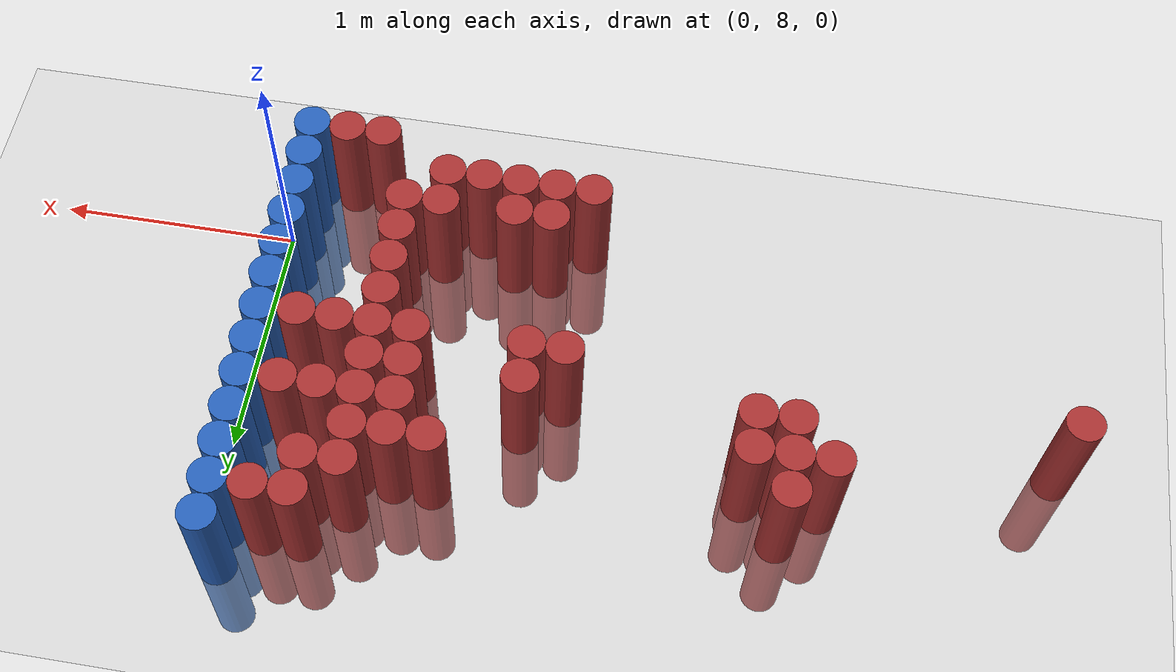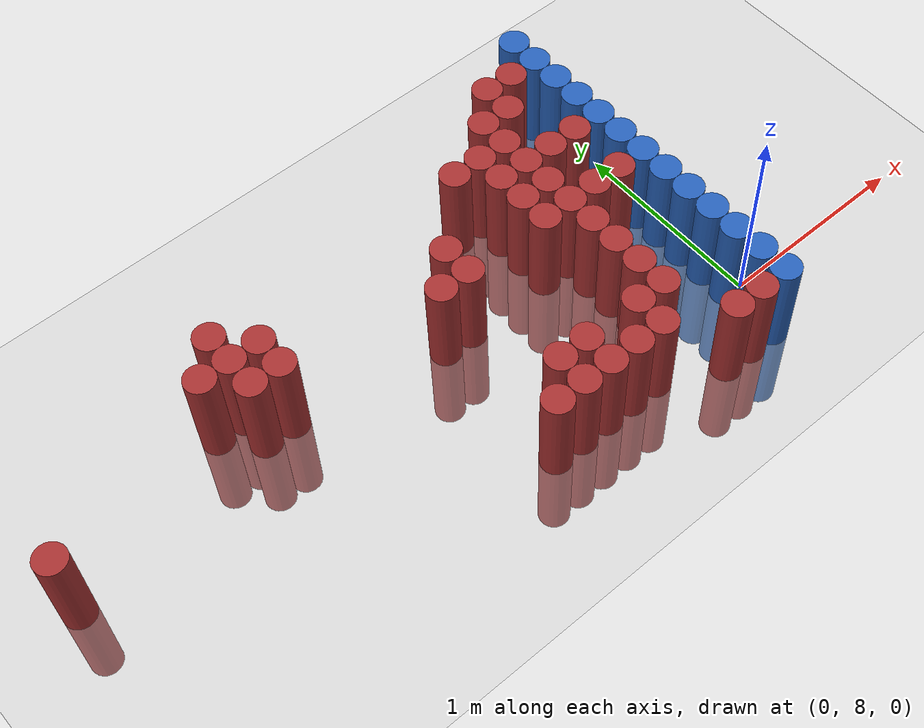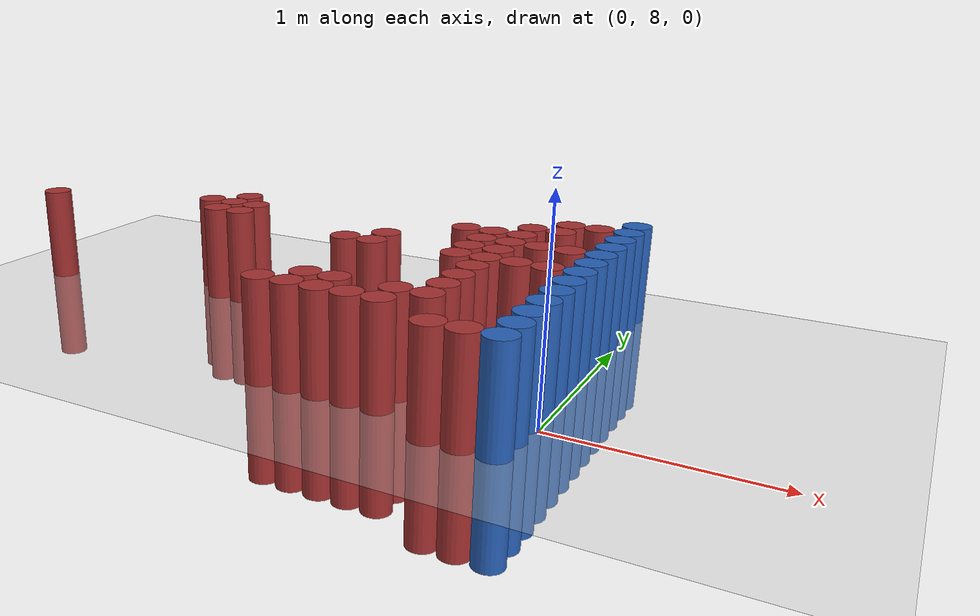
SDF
<sdf version="1.6">
 <world name="default">
  <model name="ground_plane">
   <static>1</static>
   <link name="link">
    <collision name="collision">
     <geometry><plane><normal>0 0 1</normal><size>100 100</size></plane></geometry>
     <surface><friction><ode><mu>100</mu><mu2>50</mu2></ode></friction></surface>
    </collision>
    <visual name="visual">
     <cast_shadows>0</cast_shadows>
     <geometry><plane><normal>0 0 1</normal><size>100 100</size></plane></geometry>
     <material>
      <script><uri>file://media/materials/scripts/gazebo.material</uri><name>Gazebo/Grey</name></script>
     </material>
    </visual>
   </link>
  </model>
  <model name="unit_cylinder_186">
   <static>1</static>
   <pose>-3.225000 8.625000 0.000000 0.000000 0.000000 0.000000</pose>
   <link name="link">
    <inertial>
     <mass>1</mass>
     <inertia><ixx>0.145833</ixx><ixy>0</ixy><ixz>0</ixz><iyy>0.145833</iyy><iyz>0</iyz><izz>0.125</izz></inertia>
    </inertial>
    <collision name="collision">
     <geometry><cylinder><radius>0.075000</radius><length>1</length></cylinder></geometry>
    </collision>
    <visual name="visual">
     <geometry><cylinder><radius>0.075000</radius><length>1</length></cylinder></geometry>
     <material>
      <ambient>0.648000 0.192000 0.192000 1</ambient>
      <diffuse>0.648000 0.192000 0.192000 1</diffuse>
     </material>
     <material>
      <script><name>Gazebo/Grey</name><uri>file://media/materials/scripts/gazebo.material</uri></script>
     </material>
    </visual>
   </link>
  </model>
  <model name="unit_cylinder_194">
   <static>1</static>
   <pose>-2.325000 8.925000 0.000000 0.000000 0.000000 0.000000</pose>
   <link name="link">
    <inertial>
     <mass>1</mass>
     <inertia><ixx>0.145833</ixx><ixy>0</ixy><ixz>0</ixz><iyy>0.145833</iyy><iyz>0</iyz><izz>0.125</izz></inertia>
    </inertial>
    <collision name="collision">
     <geometry><cylinder><radius>0.075000</radius><length>1</length></cylinder></geometry>
    </collision>
    <visual name="visual">
     <geometry><cylinder><radius>0.075000</radius><length>1</length></cylinder></geometry>
     <material>
      <ambient>0.648000 0.192000 0.192000 1</ambient>
      <diffuse>0.648000 0.192000 0.192000 1</diffuse>
     </material>
     <material>
      <script><name>Gazebo/Grey</name><uri>file://media/materials/scripts/gazebo.material</uri></script>
     </material>
    </visual>
   </link>
  </model>
  <model name="unit_cylinder_195">
   <static>1</static>
   <pose>-2.175000 8.775000 0.000000 0.000000 0.000000 0.000000</pose>
   <link name="link">
    <inertial>
     <mass>1</mass>
     <inertia><ixx>0.145833</ixx><ixy>0</ixy><ixz>0</ixz><iyy>0.145833</iyy><iyz>0</iyz><izz>0.125</izz></inertia>
    </inertial>
    <collision name="collision">
     <geometry><cylinder><radius>0.075000</radius><length>1</length></cylinder></geometry>
    </collision>
    <visual name="visual">
     <geometry><cylinder><radius>0.075000</radius><length>1</length></cylinder></geometry>
     <material>
      <ambient>0.648000 0.192000 0.192000 1</ambient>
      <diffuse>0.648000 0.192000 0.192000 1</diffuse>
     </material>
     <material>
      <script><name>Gazebo/Grey</name><uri>file://media/materials/scripts/gazebo.material</uri></script>
     </material>
    </visual>
   </link>
  </model>
  <model name="unit_cylinder_196">
   <static>1</static>
   <pose>-2.175000 8.925000 0.000000 0.000000 0.000000 0.000000</pose>
   <link name="link">
    <inertial>
     <mass>1</mass>
     <inertia><ixx>0.145833</ixx><ixy>0</ixy><ixz>0</ixz><iyy>0.145833</iyy><iyz>0</iyz><izz>0.125</izz></inertia>
    </inertial>
    <collision name="collision">
     <geometry><cylinder><radius>0.075000</radius><length>1</length></cylinder></geometry>
    </collision>
    <visual name="visual">
     <geometry><cylinder><radius>0.075000</radius><length>1</length></cylinder></geometry>
     <material>
      <ambient>0.648000 0.192000 0.192000 1</ambient>
      <diffuse>0.648000 0.192000 0.192000 1</diffuse>
     </material>
     <material>
      <script><name>Gazebo/Grey</name><uri>file://media/materials/scripts/gazebo.material</uri></script>
     </material>
    </visual>
   </link>
  </model>
  <model name="unit_cylinder_197">
   <static>1</static>
   <pose>-2.175000 9.075000 0.000000 0.000000 0.000000 0.000000</pose>
   <link name="link">
    <inertial>
     <mass>1</mass>
     <inertia><ixx>0.145833</ixx><ixy>0</ixy><ixz>0</ixz><iyy>0.145833</iyy><iyz>0</iyz><izz>0.125</izz></inertia>
    </inertial>
    <collision name="collision">
     <geometry><cylinder><radius>0.075000</radius><length>1</length></cylinder></geometry>
    </collision>
    <visual name="visual">
     <geometry><cylinder><radius>0.075000</radius><length>1</length></cylinder></geometry>
     <material>
      <ambient>0.648000 0.192000 0.192000 1</ambient>
      <diffuse>0.648000 0.192000 0.192000 1</diffuse>
     </material>
     <material>
      <script><name>Gazebo/Grey</name><uri>file://media/materials/scripts/gazebo.material</uri></script>
     </material>
    </visual>
   </link>
  </model>
  <model name="unit_cylinder_198">
   <static>1</static>
   <pose>-2.025000 8.775000 0.000000 0.000000 0.000000 0.000000</pose>
   <link name="link">
    <inertial>
     <mass>1</mass>
     <inertia><ixx>0.145833</ixx><ixy>0</ixy><ixz>0</ixz><iyy>0.145833</iyy><iyz>0</iyz><izz>0.125</izz></inertia>
    </inertial>
    <collision name="collision">
     <geometry><cylinder><radius>0.075000</radius><length>1</length></cylinder></geometry>
    </collision>
    <visual name="visual">
     <geometry><cylinder><radius>0.075000</radius><length>1</length></cylinder></geometry>
     <material>
      <ambient>0.648000 0.192000 0.192000 1</ambient>
      <diffuse>0.648000 0.192000 0.192000 1</diffuse>
     </material>
     <material>
      <script><name>Gazebo/Grey</name><uri>file://media/materials/scripts/gazebo.material</uri></script>
     </material>
    </visual>
   </link>
  </model>
  <model name="unit_cylinder_199">
   <static>1</static>
   <pose>-2.025000 8.925000 0.000000 0.000000 0.000000 0.000000</pose>
   <link name="link">
    <inertial>
     <mass>1</mass>
     <inertia><ixx>0.145833</ixx><ixy>0</ixy><ixz>0</ixz><iyy>0.145833</iyy><iyz>0</iyz><izz>0.125</izz></inertia>
    </inertial>
    <collision name="collision">
     <geometry><cylinder><radius>0.075000</radius><length>1</length></cylinder></geometry>
    </collision>
    <visual name="visual">
     <geometry><cylinder><radius>0.075000</radius><length>1</length></cylinder></geometry>
     <material>
      <ambient>0.648000 0.192000 0.192000 1</ambient>
      <diffuse>0.648000 0.192000 0.192000 1</diffuse>
     </material>
     <material>
      <script><name>Gazebo/Grey</name><uri>file://media/materials/scripts/gazebo.material</uri></script>
     </material>
    </visual>
   </link>
  </model>
  <model name="unit_cylinder_202">
   <static>1</static>
   <pose>-1.275000 7.875000 0.000000 0.000000 0.000000 0.000000</pose>
   <link name="link">
    <inertial>
     <mass>1</mass>
     <inertia><ixx>0.145833</ixx><ixy>0</ixy><ixz>0</ixz><iyy>0.145833</iyy><iyz>0</iyz><izz>0.125</izz></inertia>
    </inertial>
    <collision name="collision">
     <geometry><cylinder><radius>0.075000</radius><length>1</length></cylinder></geometry>
    </collision>
    <visual name="visual">
     <geometry><cylinder><radius>0.075000</radius><length>1</length></cylinder></geometry>
     <material>
      <ambient>0.648000 0.192000 0.192000 1</ambient>
      <diffuse>0.648000 0.192000 0.192000 1</diffuse>
     </material>
     <material>
      <script><name>Gazebo/Grey</name><uri>file://media/materials/scripts/gazebo.material</uri></script>
     </material>
    </visual>
   </link>
  </model>
  <model name="unit_cylinder_203">
   <static>1</static>
   <pose>-1.275000 8.625000 0.000000 0.000000 0.000000 0.000000</pose>
   <link name="link">
    <inertial>
     <mass>1</mass>
     <inertia><ixx>0.145833</ixx><ixy>0</ixy><ixz>0</ixz><iyy>0.145833</iyy><iyz>0</iyz><izz>0.125</izz></inertia>
    </inertial>
    <collision name="collision">
     <geometry><cylinder><radius>0.075000</radius><length>1</length></cylinder></geometry>
    </collision>
    <visual name="visual">
     <geometry><cylinder><radius>0.075000</radius><length>1</length></cylinder></geometry>
     <material>
      <ambient>0.648000 0.192000 0.192000 1</ambient>
      <diffuse>0.648000 0.192000 0.192000 1</diffuse>
     </material>
     <material>
      <script><name>Gazebo/Grey</name><uri>file://media/materials/scripts/gazebo.material</uri></script>
     </material>
    </visual>
   </link>
  </model>
  <model name="unit_cylinder_212">
   <static>1</static>
   <pose>-1.125000 7.875000 0.000000 0.000000 0.000000 0.000000</pose>
   <link name="link">
    <inertial>
     <mass>1</mass>
     <inertia><ixx>0.145833</ixx><ixy>0</ixy><ixz>0</ixz><iyy>0.145833</iyy><iyz>0</iyz><izz>0.125</izz></inertia>
    </inertial>
    <collision name="collision">
     <geometry><cylinder><radius>0.075000</radius><length>1</length></cylinder></geometry>
    </collision>
    <visual name="visual">
     <geometry><cylinder><radius>0.075000</radius><length>1</length></cylinder></geometry>
     <material>
      <ambient>0.648000 0.192000 0.192000 1</ambient>
      <diffuse>0.648000 0.192000 0.192000 1</diffuse>
     </material>
     <material>
      <script><name>Gazebo/Grey</name><uri>file://media/materials/scripts/gazebo.material</uri></script>
     </material>
    </visual>
   </link>
  </model>
  <model name="unit_cylinder_213">
   <static>1</static>
   <pose>-1.125000 8.025000 0.000000 0.000000 0.000000 0.000000</pose>
   <link name="link">
    <inertial>
     <mass>1</mass>
     <inertia><ixx>0.145833</ixx><ixy>0</ixy><ixz>0</ixz><iyy>0.145833</iyy><iyz>0</iyz><izz>0.125</izz></inertia>
    </inertial>
    <collision name="collision">
     <geometry><cylinder><radius>0.075000</radius><length>1</length></cylinder></geometry>
    </collision>
    <visual name="visual">
     <geometry><cylinder><radius>0.075000</radius><length>1</length></cylinder></geometry>
     <material>
      <ambient>0.648000 0.192000 0.192000 1</ambient>
      <diffuse>0.648000 0.192000 0.192000 1</diffuse>
     </material>
     <material>
      <script><name>Gazebo/Grey</name><uri>file://media/materials/scripts/gazebo.material</uri></script>
     </material>
    </visual>
   </link>
  </model>
  <model name="unit_cylinder_214">
   <static>1</static>
   <pose>-1.125000 8.625000 0.000000 0.000000 0.000000 0.000000</pose>
   <link name="link">
    <inertial>
     <mass>1</mass>
     <inertia><ixx>0.145833</ixx><ixy>0</ixy><ixz>0</ixz><iyy>0.145833</iyy><iyz>0</iyz><izz>0.125</izz></inertia>
    </inertial>
    <collision name="collision">
     <geometry><cylinder><radius>0.075000</radius><length>1</length></cylinder></geometry>
    </collision>
    <visual name="visual">
     <geometry><cylinder><radius>0.075000</radius><length>1</length></cylinder></geometry>
     <material>
      <ambient>0.648000 0.192000 0.192000 1</ambient>
      <diffuse>0.648000 0.192000 0.192000 1</diffuse>
     </material>
     <material>
      <script><name>Gazebo/Grey</name><uri>file://media/materials/scripts/gazebo.material</uri></script>
     </material>
    </visual>
   </link>
  </model>
  <model name="unit_cylinder_215">
   <static>1</static>
   <pose>-1.125000 8.775000 0.000000 0.000000 0.000000 0.000000</pose>
   <link name="link">
    <inertial>
     <mass>1</mass>
     <inertia><ixx>0.145833</ixx><ixy>0</ixy><ixz>0</ixz><iyy>0.145833</iyy><iyz>0</iyz><izz>0.125</izz></inertia>
    </inertial>
    <collision name="collision">
     <geometry><cylinder><radius>0.075000</radius><length>1</length></cylinder></geometry>
    </collision>
    <visual name="visual">
     <geometry><cylinder><radius>0.075000</radius><length>1</length></cylinder></geometry>
     <material>
      <ambient>0.648000 0.192000 0.192000 1</ambient>
      <diffuse>0.648000 0.192000 0.192000 1</diffuse>
     </material>
     <material>
      <script><name>Gazebo/Grey</name><uri>file://media/materials/scripts/gazebo.material</uri></script>
     </material>
    </visual>
   </link>
  </model>
  <model name="unit_cylinder_223">
   <static>1</static>
   <pose>-0.975000 7.875000 0.000000 0.000000 0.000000 0.000000</pose>
   <link name="link">
    <inertial>
     <mass>1</mass>
     <inertia><ixx>0.145833</ixx><ixy>0</ixy><ixz>0</ixz><iyy>0.145833</iyy><iyz>0</iyz><izz>0.125</izz></inertia>
    </inertial>
    <collision name="collision">
     <geometry><cylinder><radius>0.075000</radius><length>1</length></cylinder></geometry>
    </collision>
    <visual name="visual">
     <geometry><cylinder><radius>0.075000</radius><length>1</length></cylinder></geometry>
     <material>
      <ambient>0.648000 0.192000 0.192000 1</ambient>
      <diffuse>0.648000 0.192000 0.192000 1</diffuse>
     </material>
     <material>
      <script><name>Gazebo/Grey</name><uri>file://media/materials/scripts/gazebo.material</uri></script>
     </material>
    </visual>
   </link>
  </model>
  <model name="unit_cylinder_224">
   <static>1</static>
   <pose>-0.975000 8.025000 0.000000 0.000000 0.000000 0.000000</pose>
   <link name="link">
    <inertial>
     <mass>1</mass>
     <inertia><ixx>0.145833</ixx><ixy>0</ixy><ixz>0</ixz><iyy>0.145833</iyy><iyz>0</iyz><izz>0.125</izz></inertia>
    </inertial>
    <collision name="collision">
     <geometry><cylinder><radius>0.075000</radius><length>1</length></cylinder></geometry>
    </collision>
    <visual name="visual">
     <geometry><cylinder><radius>0.075000</radius><length>1</length></cylinder></geometry>
     <material>
      <ambient>0.648000 0.192000 0.192000 1</ambient>
      <diffuse>0.648000 0.192000 0.192000 1</diffuse>
     </material>
     <material>
      <script><name>Gazebo/Grey</name><uri>file://media/materials/scripts/gazebo.material</uri></script>
     </material>
    </visual>
   </link>
  </model>
  <model name="unit_cylinder_236">
   <static>1</static>
   <pose>-0.825000 7.875000 0.000000 0.000000 0.000000 0.000000</pose>
   <link name="link">
    <inertial>
     <mass>1</mass>
     <inertia><ixx>0.145833</ixx><ixy>0</ixy><ixz>0</ixz><iyy>0.145833</iyy><iyz>0</iyz><izz>0.125</izz></inertia>
    </inertial>
    <collision name="collision">
     <geometry><cylinder><radius>0.075000</radius><length>1</length></cylinder></geometry>
    </collision>
    <visual name="visual">
     <geometry><cylinder><radius>0.075000</radius><length>1</length></cylinder></geometry>
     <material>
      <ambient>0.648000 0.192000 0.192000 1</ambient>
      <diffuse>0.648000 0.192000 0.192000 1</diffuse>
     </material>
     <material>
      <script><name>Gazebo/Grey</name><uri>file://media/materials/scripts/gazebo.material</uri></script>
     </material>
    </visual>
   </link>
  </model>
  <model name="unit_cylinder_237">
   <static>1</static>
   <pose>-0.825000 9.075000 0.000000 0.000000 0.000000 0.000000</pose>
   <link name="link">
    <inertial>
     <mass>1</mass>
     <inertia><ixx>0.145833</ixx><ixy>0</ixy><ixz>0</ixz><iyy>0.145833</iyy><iyz>0</iyz><izz>0.125</izz></inertia>
    </inertial>
    <collision name="collision">
     <geometry><cylinder><radius>0.075000</radius><length>1</length></cylinder></geometry>
    </collision>
    <visual name="visual">
     <geometry><cylinder><radius>0.075000</radius><length>1</length></cylinder></geometry>
     <material>
      <ambient>0.648000 0.192000 0.192000 1</ambient>
      <diffuse>0.648000 0.192000 0.192000 1</diffuse>
     </material>
     <material>
      <script><name>Gazebo/Grey</name><uri>file://media/materials/scripts/gazebo.material</uri></script>
     </material>
    </visual>
   </link>
  </model>
  <model name="unit_cylinder_246">
   <static>1</static>
   <pose>-0.675000 7.875000 0.000000 0.000000 0.000000 0.000000</pose>
   <link name="link">
    <inertial>
     <mass>1</mass>
     <inertia><ixx>0.145833</ixx><ixy>0</ixy><ixz>0</ixz><iyy>0.145833</iyy><iyz>0</iyz><izz>0.125</izz></inertia>
    </inertial>
    <collision name="collision">
     <geometry><cylinder><radius>0.075000</radius><length>1</length></cylinder></geometry>
    </collision>
    <visual name="visual">
     <geometry><cylinder><radius>0.075000</radius><length>1</length></cylinder></geometry>
     <material>
      <ambient>0.648000 0.192000 0.192000 1</ambient>
      <diffuse>0.648000 0.192000 0.192000 1</diffuse>
     </material>
     <material>
      <script><name>Gazebo/Grey</name><uri>file://media/materials/scripts/gazebo.material</uri></script>
     </material>
    </visual>
   </link>
  </model>
  <model name="unit_cylinder_247">
   <static>1</static>
   <pose>-0.675000 8.025000 0.000000 0.000000 0.000000 0.000000</pose>
   <link name="link">
    <inertial>
     <mass>1</mass>
     <inertia><ixx>0.145833</ixx><ixy>0</ixy><ixz>0</ixz><iyy>0.145833</iyy><iyz>0</iyz><izz>0.125</izz></inertia>
    </inertial>
    <collision name="collision">
     <geometry><cylinder><radius>0.075000</radius><length>1</length></cylinder></geometry>
    </collision>
    <visual name="visual">
     <geometry><cylinder><radius>0.075000</radius><length>1</length></cylinder></geometry>
     <material>
      <ambient>0.648000 0.192000 0.192000 1</ambient>
      <diffuse>0.648000 0.192000 0.192000 1</diffuse>
     </material>
     <material>
      <script><name>Gazebo/Grey</name><uri>file://media/materials/scripts/gazebo.material</uri></script>
     </material>
    </visual>
   </link>
  </model>
  <model name="unit_cylinder_248">
   <static>1</static>
   <pose>-0.675000 8.625000 0.000000 0.000000 0.000000 0.000000</pose>
   <link name="link">
    <inertial>
     <mass>1</mass>
     <inertia><ixx>0.145833</ixx><ixy>0</ixy><ixz>0</ixz><iyy>0.145833</iyy><iyz>0</iyz><izz>0.125</izz></inertia>
    </inertial>
    <collision name="collision">
     <geometry><cylinder><radius>0.075000</radius><length>1</length></cylinder></geometry>
    </collision>
    <visual name="visual">
     <geometry><cylinder><radius>0.075000</radius><length>1</length></cylinder></geometry>
     <material>
      <ambient>0.648000 0.192000 0.192000 1</ambient>
      <diffuse>0.648000 0.192000 0.192000 1</diffuse>
     </material>
     <material>
      <script><name>Gazebo/Grey</name><uri>file://media/materials/scripts/gazebo.material</uri></script>
     </material>
    </visual>
   </link>
  </model>
  <model name="unit_cylinder_249">
   <static>1</static>
   <pose>-0.675000 8.775000 0.000000 0.000000 0.000000 0.000000</pose>
   <link name="link">
    <inertial>
     <mass>1</mass>
     <inertia><ixx>0.145833</ixx><ixy>0</ixy><ixz>0</ixz><iyy>0.145833</iyy><iyz>0</iyz><izz>0.125</izz></inertia>
    </inertial>
    <collision name="collision">
     <geometry><cylinder><radius>0.075000</radius><length>1</length></cylinder></geometry>
    </collision>
    <visual name="visual">
     <geometry><cylinder><radius>0.075000</radius><length>1</length></cylinder></geometry>
     <material>
      <ambient>0.648000 0.192000 0.192000 1</ambient>
      <diffuse>0.648000 0.192000 0.192000 1</diffuse>
     </material>
     <material>
      <script><name>Gazebo/Grey</name><uri>file://media/materials/scripts/gazebo.material</uri></script>
     </material>
    </visual>
   </link>
  </model>
  <model name="unit_cylinder_250">
   <static>1</static>
   <pose>-0.675000 8.925000 0.000000 0.000000 0.000000 0.000000</pose>
   <link name="link">
    <inertial>
     <mass>1</mass>
     <inertia><ixx>0.145833</ixx><ixy>0</ixy><ixz>0</ixz><iyy>0.145833</iyy><iyz>0</iyz><izz>0.125</izz></inertia>
    </inertial>
    <collision name="collision">
     <geometry><cylinder><radius>0.075000</radius><length>1</length></cylinder></geometry>
    </collision>
    <visual name="visual">
     <geometry><cylinder><radius>0.075000</radius><length>1</length></cylinder></geometry>
     <material>
      <ambient>0.648000 0.192000 0.192000 1</ambient>
      <diffuse>0.648000 0.192000 0.192000 1</diffuse>
     </material>
     <material>
      <script><name>Gazebo/Grey</name><uri>file://media/materials/scripts/gazebo.material</uri></script>
     </material>
    </visual>
   </link>
  </model>
  <model name="unit_cylinder_251">
   <static>1</static>
   <pose>-0.675000 9.075000 0.000000 0.000000 0.000000 0.000000</pose>
   <link name="link">
    <inertial>
     <mass>1</mass>
     <inertia><ixx>0.145833</ixx><ixy>0</ixy><ixz>0</ixz><iyy>0.145833</iyy><iyz>0</iyz><izz>0.125</izz></inertia>
    </inertial>
    <collision name="collision">
     <geometry><cylinder><radius>0.075000</radius><length>1</length></cylinder></geometry>
    </collision>
    <visual name="visual">
     <geometry><cylinder><radius>0.075000</radius><length>1</length></cylinder></geometry>
     <material>
      <ambient>0.648000 0.192000 0.192000 1</ambient>
      <diffuse>0.648000 0.192000 0.192000 1</diffuse>
     </material>
     <material>
      <script><name>Gazebo/Grey</name><uri>file://media/materials/scripts/gazebo.material</uri></script>
     </material>
    </visual>
   </link>
  </model>
  <model name="unit_cylinder_256">
   <static>1</static>
   <pose>-0.525000 8.025000 0.000000 0.000000 0.000000 0.000000</pose>
   <link name="link">
    <inertial>
     <mass>1</mass>
     <inertia><ixx>0.145833</ixx><ixy>0</ixy><ixz>0</ixz><iyy>0.145833</iyy><iyz>0</iyz><izz>0.125</izz></inertia>
    </inertial>
    <collision name="collision">
     <geometry><cylinder><radius>0.075000</radius><length>1</length></cylinder></geometry>
    </collision>
    <visual name="visual">
     <geometry><cylinder><radius>0.075000</radius><length>1</length></cylinder></geometry>
     <material>
      <ambient>0.648000 0.192000 0.192000 1</ambient>
      <diffuse>0.648000 0.192000 0.192000 1</diffuse>
     </material>
     <material>
      <script><name>Gazebo/Grey</name><uri>file://media/materials/scripts/gazebo.material</uri></script>
     </material>
    </visual>
   </link>
  </model>
  <model name="unit_cylinder_257">
   <static>1</static>
   <pose>-0.525000 8.175000 0.000000 0.000000 0.000000 0.000000</pose>
   <link name="link">
    <inertial>
     <mass>1</mass>
     <inertia><ixx>0.145833</ixx><ixy>0</ixy><ixz>0</ixz><iyy>0.145833</iyy><iyz>0</iyz><izz>0.125</izz></inertia>
    </inertial>
    <collision name="collision">
     <geometry><cylinder><radius>0.075000</radius><length>1</length></cylinder></geometry>
    </collision>
    <visual name="visual">
     <geometry><cylinder><radius>0.075000</radius><length>1</length></cylinder></geometry>
     <material>
      <ambient>0.648000 0.192000 0.192000 1</ambient>
      <diffuse>0.648000 0.192000 0.192000 1</diffuse>
     </material>
     <material>
      <script><name>Gazebo/Grey</name><uri>file://media/materials/scripts/gazebo.material</uri></script>
     </material>
    </visual>
   </link>
  </model>
  <model name="unit_cylinder_258">
   <static>1</static>
   <pose>-0.525000 8.325000 0.000000 0.000000 0.000000 0.000000</pose>
   <link name="link">
    <inertial>
     <mass>1</mass>
     <inertia><ixx>0.145833</ixx><ixy>0</ixy><ixz>0</ixz><iyy>0.145833</iyy><iyz>0</iyz><izz>0.125</izz></inertia>
    </inertial>
    <collision name="collision">
     <geometry><cylinder><radius>0.075000</radius><length>1</length></cylinder></geometry>
    </collision>
    <visual name="visual">
     <geometry><cylinder><radius>0.075000</radius><length>1</length></cylinder></geometry>
     <material>
      <ambient>0.648000 0.192000 0.192000 1</ambient>
      <diffuse>0.648000 0.192000 0.192000 1</diffuse>
     </material>
     <material>
      <script><name>Gazebo/Grey</name><uri>file://media/materials/scripts/gazebo.material</uri></script>
     </material>
    </visual>
   </link>
  </model>
  <model name="unit_cylinder_259">
   <static>1</static>
   <pose>-0.525000 8.475000 0.000000 0.000000 0.000000 0.000000</pose>
   <link name="link">
    <inertial>
     <mass>1</mass>
     <inertia><ixx>0.145833</ixx><ixy>0</ixy><ixz>0</ixz><iyy>0.145833</iyy><iyz>0</iyz><izz>0.125</izz></inertia>
    </inertial>
    <collision name="collision">
     <geometry><cylinder><radius>0.075000</radius><length>1</length></cylinder></geometry>
    </collision>
    <visual name="visual">
     <geometry><cylinder><radius>0.075000</radius><length>1</length></cylinder></geometry>
     <material>
      <ambient>0.648000 0.192000 0.192000 1</ambient>
      <diffuse>0.648000 0.192000 0.192000 1</diffuse>
     </material>
     <material>
      <script><name>Gazebo/Grey</name><uri>file://media/materials/scripts/gazebo.material</uri></script>
     </material>
    </visual>
   </link>
  </model>
  <model name="unit_cylinder_260">
   <static>1</static>
   <pose>-0.525000 8.625000 0.000000 0.000000 0.000000 0.000000</pose>
   <link name="link">
    <inertial>
     <mass>1</mass>
     <inertia><ixx>0.145833</ixx><ixy>0</ixy><ixz>0</ixz><iyy>0.145833</iyy><iyz>0</iyz><izz>0.125</izz></inertia>
    </inertial>
    <collision name="collision">
     <geometry><cylinder><radius>0.075000</radius><length>1</length></cylinder></geometry>
    </collision>
    <visual name="visual">
     <geometry><cylinder><radius>0.075000</radius><length>1</length></cylinder></geometry>
     <material>
      <ambient>0.648000 0.192000 0.192000 1</ambient>
      <diffuse>0.648000 0.192000 0.192000 1</diffuse>
     </material>
     <material>
      <script><name>Gazebo/Grey</name><uri>file://media/materials/scripts/gazebo.material</uri></script>
     </material>
    </visual>
   </link>
  </model>
  <model name="unit_cylinder_261">
   <static>1</static>
   <pose>-0.525000 8.775000 0.000000 0.000000 0.000000 0.000000</pose>
   <link name="link">
    <inertial>
     <mass>1</mass>
     <inertia><ixx>0.145833</ixx><ixy>0</ixy><ixz>0</ixz><iyy>0.145833</iyy><iyz>0</iyz><izz>0.125</izz></inertia>
    </inertial>
    <collision name="collision">
     <geometry><cylinder><radius>0.075000</radius><length>1</length></cylinder></geometry>
    </collision>
    <visual name="visual">
     <geometry><cylinder><radius>0.075000</radius><length>1</length></cylinder></geometry>
     <material>
      <ambient>0.648000 0.192000 0.192000 1</ambient>
      <diffuse>0.648000 0.192000 0.192000 1</diffuse>
     </material>
     <material>
      <script><name>Gazebo/Grey</name><uri>file://media/materials/scripts/gazebo.material</uri></script>
     </material>
    </visual>
   </link>
  </model>
  <model name="unit_cylinder_262">
   <static>1</static>
   <pose>-0.525000 8.925000 0.000000 0.000000 0.000000 0.000000</pose>
   <link name="link">
    <inertial>
     <mass>1</mass>
     <inertia><ixx>0.145833</ixx><ixy>0</ixy><ixz>0</ixz><iyy>0.145833</iyy><iyz>0</iyz><izz>0.125</izz></inertia>
    </inertial>
    <collision name="collision">
     <geometry><cylinder><radius>0.075000</radius><length>1</length></cylinder></geometry>
    </collision>
    <visual name="visual">
     <geometry><cylinder><radius>0.075000</radius><length>1</length></cylinder></geometry>
     <material>
      <ambient>0.648000 0.192000 0.192000 1</ambient>
      <diffuse>0.648000 0.192000 0.192000 1</diffuse>
     </material>
     <material>
      <script><name>Gazebo/Grey</name><uri>file://media/materials/scripts/gazebo.material</uri></script>
     </material>
    </visual>
   </link>
  </model>
  <model name="unit_cylinder_263">
   <static>1</static>
   <pose>-0.525000 9.075000 0.000000 0.000000 0.000000 0.000000</pose>
   <link name="link">
    <inertial>
     <mass>1</mass>
     <inertia><ixx>0.145833</ixx><ixy>0</ixy><ixz>0</ixz><iyy>0.145833</iyy><iyz>0</iyz><izz>0.125</izz></inertia>
    </inertial>
    <collision name="collision">
     <geometry><cylinder><radius>0.075000</radius><length>1</length></cylinder></geometry>
    </collision>
    <visual name="visual">
     <geometry><cylinder><radius>0.075000</radius><length>1</length></cylinder></geometry>
     <material>
      <ambient>0.648000 0.192000 0.192000 1</ambient>
      <diffuse>0.648000 0.192000 0.192000 1</diffuse>
     </material>
     <material>
      <script><name>Gazebo/Grey</name><uri>file://media/materials/scripts/gazebo.material</uri></script>
     </material>
    </visual>
   </link>
  </model>
  <model name="unit_cylinder_264">
   <static>1</static>
   <pose>-0.525000 9.225000 0.000000 0.000000 0.000000 0.000000</pose>
   <link name="link">
    <inertial>
     <mass>1</mass>
     <inertia><ixx>0.145833</ixx><ixy>0</ixy><ixz>0</ixz><iyy>0.145833</iyy><iyz>0</iyz><izz>0.125</izz></inertia>
    </inertial>
    <collision name="collision">
     <geometry><cylinder><radius>0.075000</radius><length>1</length></cylinder></geometry>
    </collision>
    <visual name="visual">
     <geometry><cylinder><radius>0.075000</radius><length>1</length></cylinder></geometry>
     <material>
      <ambient>0.648000 0.192000 0.192000 1</ambient>
      <diffuse>0.648000 0.192000 0.192000 1</diffuse>
     </material>
     <material>
      <script><name>Gazebo/Grey</name><uri>file://media/materials/scripts/gazebo.material</uri></script>
     </material>
    </visual>
   </link>
  </model>
  <model name="unit_cylinder_269">
   <static>1</static>
   <pose>-0.375000 7.725000 0.000000 0.000000 0.000000 0.000000</pose>
   <link name="link">
    <inertial>
     <mass>1</mass>
     <inertia><ixx>0.145833</ixx><ixy>0</ixy><ixz>0</ixz><iyy>0.145833</iyy><iyz>0</iyz><izz>0.125</izz></inertia>
    </inertial>
    <collision name="collision">
     <geometry><cylinder><radius>0.075000</radius><length>1</length></cylinder></geometry>
    </collision>
    <visual name="visual">
     <geometry><cylinder><radius>0.075000</radius><length>1</length></cylinder></geometry>
     <material>
      <ambient>0.648000 0.192000 0.192000 1</ambient>
      <diffuse>0.648000 0.192000 0.192000 1</diffuse>
     </material>
     <material>
      <script><name>Gazebo/Grey</name><uri>file://media/materials/scripts/gazebo.material</uri></script>
     </material>
    </visual>
   </link>
  </model>
  <model name="unit_cylinder_270">
   <static>1</static>
   <pose>-0.375000 8.625000 0.000000 0.000000 0.000000 0.000000</pose>
   <link name="link">
    <inertial>
     <mass>1</mass>
     <inertia><ixx>0.145833</ixx><ixy>0</ixy><ixz>0</ixz><iyy>0.145833</iyy><iyz>0</iyz><izz>0.125</izz></inertia>
    </inertial>
    <collision name="collision">
     <geometry><cylinder><radius>0.075000</radius><length>1</length></cylinder></geometry>
    </collision>
    <visual name="visual">
     <geometry><cylinder><radius>0.075000</radius><length>1</length></cylinder></geometry>
     <material>
      <ambient>0.648000 0.192000 0.192000 1</ambient>
      <diffuse>0.648000 0.192000 0.192000 1</diffuse>
     </material>
     <material>
      <script><name>Gazebo/Grey</name><uri>file://media/materials/scripts/gazebo.material</uri></script>
     </material>
    </visual>
   </link>
  </model>
  <model name="unit_cylinder_271">
   <static>1</static>
   <pose>-0.375000 8.925000 0.000000 0.000000 0.000000 0.000000</pose>
   <link name="link">
    <inertial>
     <mass>1</mass>
     <inertia><ixx>0.145833</ixx><ixy>0</ixy><ixz>0</ixz><iyy>0.145833</iyy><iyz>0</iyz><izz>0.125</izz></inertia>
    </inertial>
    <collision name="collision">
     <geometry><cylinder><radius>0.075000</radius><length>1</length></cylinder></geometry>
    </collision>
    <visual name="visual">
     <geometry><cylinder><radius>0.075000</radius><length>1</length></cylinder></geometry>
     <material>
      <ambient>0.648000 0.192000 0.192000 1</ambient>
      <diffuse>0.648000 0.192000 0.192000 1</diffuse>
     </material>
     <material>
      <script><name>Gazebo/Grey</name><uri>file://media/materials/scripts/gazebo.material</uri></script>
     </material>
    </visual>
   </link>
  </model>
  <model name="unit_cylinder_272">
   <static>1</static>
   <pose>-0.375000 9.225000 0.000000 0.000000 0.000000 0.000000</pose>
   <link name="link">
    <inertial>
     <mass>1</mass>
     <inertia><ixx>0.145833</ixx><ixy>0</ixy><ixz>0</ixz><iyy>0.145833</iyy><iyz>0</iyz><izz>0.125</izz></inertia>
    </inertial>
    <collision name="collision">
     <geometry><cylinder><radius>0.075000</radius><length>1</length></cylinder></geometry>
    </collision>
    <visual name="visual">
     <geometry><cylinder><radius>0.075000</radius><length>1</length></cylinder></geometry>
     <material>
      <ambient>0.648000 0.192000 0.192000 1</ambient>
      <diffuse>0.648000 0.192000 0.192000 1</diffuse>
     </material>
     <material>
      <script><name>Gazebo/Grey</name><uri>file://media/materials/scripts/gazebo.material</uri></script>
     </material>
    </visual>
   </link>
  </model>
  <model name="unit_cylinder_273">
   <static>1</static>
   <pose>-0.375000 9.375000 0.000000 0.000000 0.000000 0.000000</pose>
   <link name="link">
    <inertial>
     <mass>1</mass>
     <inertia><ixx>0.145833</ixx><ixy>0</ixy><ixz>0</ixz><iyy>0.145833</iyy><iyz>0</iyz><izz>0.125</izz></inertia>
    </inertial>
    <collision name="collision">
     <geometry><cylinder><radius>0.075000</radius><length>1</length></cylinder></geometry>
    </collision>
    <visual name="visual">
     <geometry><cylinder><radius>0.075000</radius><length>1</length></cylinder></geometry>
     <material>
      <ambient>0.648000 0.192000 0.192000 1</ambient>
      <diffuse>0.648000 0.192000 0.192000 1</diffuse>
     </material>
     <material>
      <script><name>Gazebo/Grey</name><uri>file://media/materials/scripts/gazebo.material</uri></script>
     </material>
    </visual>
   </link>
  </model>
  <model name="unit_cylinder_287">
   <static>1</static>
   <pose>-0.225000 7.725000 0.000000 0.000000 0.000000 0.000000</pose>
   <link name="link">
    <inertial>
     <mass>1</mass>
     <inertia><ixx>0.145833</ixx><ixy>0</ixy><ixz>0</ixz><iyy>0.145833</iyy><iyz>0</iyz><izz>0.125</izz></inertia>
    </inertial>
    <collision name="collision">
     <geometry><cylinder><radius>0.075000</radius><length>1</length></cylinder></geometry>
    </collision>
    <visual name="visual">
     <geometry><cylinder><radius>0.075000</radius><length>1</length></cylinder></geometry>
     <material>
      <ambient>0.648000 0.192000 0.192000 1</ambient>
      <diffuse>0.648000 0.192000 0.192000 1</diffuse>
     </material>
     <material>
      <script><name>Gazebo/Grey</name><uri>file://media/materials/scripts/gazebo.material</uri></script>
     </material>
    </visual>
   </link>
  </model>
  <model name="unit_cylinder_288">
   <static>1</static>
   <pose>-0.225000 8.625000 0.000000 0.000000 0.000000 0.000000</pose>
   <link name="link">
    <inertial>
     <mass>1</mass>
     <inertia><ixx>0.145833</ixx><ixy>0</ixy><ixz>0</ixz><iyy>0.145833</iyy><iyz>0</iyz><izz>0.125</izz></inertia>
    </inertial>
    <collision name="collision">
     <geometry><cylinder><radius>0.075000</radius><length>1</length></cylinder></geometry>
    </collision>
    <visual name="visual">
     <geometry><cylinder><radius>0.075000</radius><length>1</length></cylinder></geometry>
     <material>
      <ambient>0.648000 0.192000 0.192000 1</ambient>
      <diffuse>0.648000 0.192000 0.192000 1</diffuse>
     </material>
     <material>
      <script><name>Gazebo/Grey</name><uri>file://media/materials/scripts/gazebo.material</uri></script>
     </material>
    </visual>
   </link>
  </model>
  <model name="unit_cylinder_289">
   <static>1</static>
   <pose>-0.225000 8.925000 0.000000 0.000000 0.000000 0.000000</pose>
   <link name="link">
    <inertial>
     <mass>1</mass>
     <inertia><ixx>0.145833</ixx><ixy>0</ixy><ixz>0</ixz><iyy>0.145833</iyy><iyz>0</iyz><izz>0.125</izz></inertia>
    </inertial>
    <collision name="collision">
     <geometry><cylinder><radius>0.075000</radius><length>1</length></cylinder></geometry>
    </collision>
    <visual name="visual">
     <geometry><cylinder><radius>0.075000</radius><length>1</length></cylinder></geometry>
     <material>
      <ambient>0.648000 0.192000 0.192000 1</ambient>
      <diffuse>0.648000 0.192000 0.192000 1</diffuse>
     </material>
     <material>
      <script><name>Gazebo/Grey</name><uri>file://media/materials/scripts/gazebo.material</uri></script>
     </material>
    </visual>
   </link>
  </model>
  <model name="unit_cylinder_290">
   <static>1</static>
   <pose>-0.225000 9.375000 0.000000 0.000000 0.000000 0.000000</pose>
   <link name="link">
    <inertial>
     <mass>1</mass>
     <inertia><ixx>0.145833</ixx><ixy>0</ixy><ixz>0</ixz><iyy>0.145833</iyy><iyz>0</iyz><izz>0.125</izz></inertia>
    </inertial>
    <collision name="collision">
     <geometry><cylinder><radius>0.075000</radius><length>1</length></cylinder></geometry>
    </collision>
    <visual name="visual">
     <geometry><cylinder><radius>0.075000</radius><length>1</length></cylinder></geometry>
     <material>
      <ambient>0.648000 0.192000 0.192000 1</ambient>
      <diffuse>0.648000 0.192000 0.192000 1</diffuse>
     </material>
     <material>
      <script><name>Gazebo/Grey</name><uri>file://media/materials/scripts/gazebo.material</uri></script>
     </material>
    </visual>
   </link>
  </model>
  <model name="unit_cylinder_308">
   <static>1</static>
   <pose>-0.075000 7.725000 0.000000 0.000000 0.000000 0.000000</pose>
   <link name="link">
    <inertial>
     <mass>1</mass>
     <inertia><ixx>0.145833</ixx><ixy>0</ixy><ixz>0</ixz><iyy>0.145833</iyy><iyz>0</iyz><izz>0.125</izz></inertia>
    </inertial>
    <collision name="collision">
     <geometry><cylinder><radius>0.075000</radius><length>1</length></cylinder></geometry>
    </collision>
    <visual name="visual">
     <geometry><cylinder><radius>0.075000</radius><length>1</length></cylinder></geometry>
     <material>
      <ambient>0.152000 0.379000 0.720000 1</ambient>
      <diffuse>0.152000 0.379000 0.720000 1</diffuse>
     </material>
     <material>
      <script><name>Gazebo/Grey</name><uri>file://media/materials/scripts/gazebo.material</uri></script>
     </material>
    </visual>
   </link>
  </model>
  <model name="unit_cylinder_309">
   <static>1</static>
   <pose>-0.075000 7.875000 0.000000 0.000000 0.000000 0.000000</pose>
   <link name="link">
    <inertial>
     <mass>1</mass>
     <inertia><ixx>0.145833</ixx><ixy>0</ixy><ixz>0</ixz><iyy>0.145833</iyy><iyz>0</iyz><izz>0.125</izz></inertia>
    </inertial>
    <collision name="collision">
     <geometry><cylinder><radius>0.075000</radius><length>1</length></cylinder></geometry>
    </collision>
    <visual name="visual">
     <geometry><cylinder><radius>0.075000</radius><length>1</length></cylinder></geometry>
     <material>
      <ambient>0.152000 0.379000 0.720000 1</ambient>
      <diffuse>0.152000 0.379000 0.720000 1</diffuse>
     </material>
     <material>
      <script><name>Gazebo/Grey</name><uri>file://media/materials/scripts/gazebo.material</uri></script>
     </material>
    </visual>
   </link>
  </model>
  <model name="unit_cylinder_310">
   <static>1</static>
   <pose>-0.075000 8.025000 0.000000 0.000000 0.000000 0.000000</pose>
   <link name="link">
    <inertial>
     <mass>1</mass>
     <inertia><ixx>0.145833</ixx><ixy>0</ixy><ixz>0</ixz><iyy>0.145833</iyy><iyz>0</iyz><izz>0.125</izz></inertia>
    </inertial>
    <collision name="collision">
     <geometry><cylinder><radius>0.075000</radius><length>1</length></cylinder></geometry>
    </collision>
    <visual name="visual">
     <geometry><cylinder><radius>0.075000</radius><length>1</length></cylinder></geometry>
     <material>
      <ambient>0.152000 0.379000 0.720000 1</ambient>
      <diffuse>0.152000 0.379000 0.720000 1</diffuse>
     </material>
     <material>
      <script><name>Gazebo/Grey</name><uri>file://media/materials/scripts/gazebo.material</uri></script>
     </material>
    </visual>
   </link>
  </model>
  <model name="unit_cylinder_311">
   <static>1</static>
   <pose>-0.075000 8.175000 0.000000 0.000000 0.000000 0.000000</pose>
   <link name="link">
    <inertial>
     <mass>1</mass>
     <inertia><ixx>0.145833</ixx><ixy>0</ixy><ixz>0</ixz><iyy>0.145833</iyy><iyz>0</iyz><izz>0.125</izz></inertia>
    </inertial>
    <collision name="collision">
     <geometry><cylinder><radius>0.075000</radius><length>1</length></cylinder></geometry>
    </collision>
    <visual name="visual">
     <geometry><cylinder><radius>0.075000</radius><length>1</length></cylinder></geometry>
     <material>
      <ambient>0.152000 0.379000 0.720000 1</ambient>
      <diffuse>0.152000 0.379000 0.720000 1</diffuse>
     </material>
     <material>
      <script><name>Gazebo/Grey</name><uri>file://media/materials/scripts/gazebo.material</uri></script>
     </material>
    </visual>
   </link>
  </model>
  <model name="unit_cylinder_312">
   <static>1</static>
   <pose>-0.075000 8.325000 0.000000 0.000000 0.000000 0.000000</pose>
   <link name="link">
    <inertial>
     <mass>1</mass>
     <inertia><ixx>0.145833</ixx><ixy>0</ixy><ixz>0</ixz><iyy>0.145833</iyy><iyz>0</iyz><izz>0.125</izz></inertia>
    </inertial>
    <collision name="collision">
     <geometry><cylinder><radius>0.075000</radius><length>1</length></cylinder></geometry>
    </collision>
    <visual name="visual">
     <geometry><cylinder><radius>0.075000</radius><length>1</length></cylinder></geometry>
     <material>
      <ambient>0.152000 0.379000 0.720000 1</ambient>
      <diffuse>0.152000 0.379000 0.720000 1</diffuse>
     </material>
     <material>
      <script><name>Gazebo/Grey</name><uri>file://media/materials/scripts/gazebo.material</uri></script>
     </material>
    </visual>
   </link>
  </model>
  <model name="unit_cylinder_313">
   <static>1</static>
   <pose>-0.075000 8.475000 0.000000 0.000000 0.000000 0.000000</pose>
   <link name="link">
    <inertial>
     <mass>1</mass>
     <inertia><ixx>0.145833</ixx><ixy>0</ixy><ixz>0</ixz><iyy>0.145833</iyy><iyz>0</iyz><izz>0.125</izz></inertia>
    </inertial>
    <collision name="collision">
     <geometry><cylinder><radius>0.075000</radius><length>1</length></cylinder></geometry>
    </collision>
    <visual name="visual">
     <geometry><cylinder><radius>0.075000</radius><length>1</length></cylinder></geometry>
     <material>
      <ambient>0.152000 0.379000 0.720000 1</ambient>
      <diffuse>0.152000 0.379000 0.720000 1</diffuse>
     </material>
     <material>
      <script><name>Gazebo/Grey</name><uri>file://media/materials/scripts/gazebo.material</uri></script>
     </material>
    </visual>
   </link>
  </model>
  <model name="unit_cylinder_314">
   <static>1</static>
   <pose>-0.075000 8.625000 0.000000 0.000000 0.000000 0.000000</pose>
   <link name="link">
    <inertial>
     <mass>1</mass>
     <inertia><ixx>0.145833</ixx><ixy>0</ixy><ixz>0</ixz><iyy>0.145833</iyy><iyz>0</iyz><izz>0.125</izz></inertia>
    </inertial>
    <collision name="collision">
     <geometry><cylinder><radius>0.075000</radius><length>1</length></cylinder></geometry>
    </collision>
    <visual name="visual">
     <geometry><cylinder><radius>0.075000</radius><length>1</length></cylinder></geometry>
     <material>
      <ambient>0.152000 0.379000 0.720000 1</ambient>
      <diffuse>0.152000 0.379000 0.720000 1</diffuse>
     </material>
     <material>
      <script><name>Gazebo/Grey</name><uri>file://media/materials/scripts/gazebo.material</uri></script>
     </material>
    </visual>
   </link>
  </model>
  <model name="unit_cylinder_315">
   <static>1</static>
   <pose>-0.075000 8.775000 0.000000 0.000000 0.000000 0.000000</pose>
   <link name="link">
    <inertial>
     <mass>1</mass>
     <inertia><ixx>0.145833</ixx><ixy>0</ixy><ixz>0</ixz><iyy>0.145833</iyy><iyz>0</iyz><izz>0.125</izz></inertia>
    </inertial>
    <collision name="collision">
     <geometry><cylinder><radius>0.075000</radius><length>1</length></cylinder></geometry>
    </collision>
    <visual name="visual">
     <geometry><cylinder><radius>0.075000</radius><length>1</length></cylinder></geometry>
     <material>
      <ambient>0.152000 0.379000 0.720000 1</ambient>
      <diffuse>0.152000 0.379000 0.720000 1</diffuse>
     </material>
     <material>
      <script><name>Gazebo/Grey</name><uri>file://media/materials/scripts/gazebo.material</uri></script>
     </material>
    </visual>
   </link>
  </model>
  <model name="unit_cylinder_316">
   <static>1</static>
   <pose>-0.075000 8.925000 0.000000 0.000000 0.000000 0.000000</pose>
   <link name="link">
    <inertial>
     <mass>1</mass>
     <inertia><ixx>0.145833</ixx><ixy>0</ixy><ixz>0</ixz><iyy>0.145833</iyy><iyz>0</iyz><izz>0.125</izz></inertia>
    </inertial>
    <collision name="collision">
     <geometry><cylinder><radius>0.075000</radius><length>1</length></cylinder></geometry>
    </collision>
    <visual name="visual">
     <geometry><cylinder><radius>0.075000</radius><length>1</length></cylinder></geometry>
     <material>
      <ambient>0.152000 0.379000 0.720000 1</ambient>
      <diffuse>0.152000 0.379000 0.720000 1</diffuse>
     </material>
     <material>
      <script><name>Gazebo/Grey</name><uri>file://media/materials/scripts/gazebo.material</uri></script>
     </material>
    </visual>
   </link>
  </model>
  <model name="unit_cylinder_317">
   <static>1</static>
   <pose>-0.075000 9.075000 0.000000 0.000000 0.000000 0.000000</pose>
   <link name="link">
    <inertial>
     <mass>1</mass>
     <inertia><ixx>0.145833</ixx><ixy>0</ixy><ixz>0</ixz><iyy>0.145833</iyy><iyz>0</iyz><izz>0.125</izz></inertia>
    </inertial>
    <collision name="collision">
     <geometry><cylinder><radius>0.075000</radius><length>1</length></cylinder></geometry>
    </collision>
    <visual name="visual">
     <geometry><cylinder><radius>0.075000</radius><length>1</length></cylinder></geometry>
     <material>
      <ambient>0.152000 0.379000 0.720000 1</ambient>
      <diffuse>0.152000 0.379000 0.720000 1</diffuse>
     </material>
     <material>
      <script><name>Gazebo/Grey</name><uri>file://media/materials/scripts/gazebo.material</uri></script>
     </material>
    </visual>
   </link>
  </model>
  <model name="unit_cylinder_318">
   <static>1</static>
   <pose>-0.075000 9.225000 0.000000 0.000000 0.000000 0.000000</pose>
   <link name="link">
    <inertial>
     <mass>1</mass>
     <inertia><ixx>0.145833</ixx><ixy>0</ixy><ixz>0</ixz><iyy>0.145833</iyy><iyz>0</iyz><izz>0.125</izz></inertia>
    </inertial>
    <collision name="collision">
     <geometry><cylinder><radius>0.075000</radius><length>1</length></cylinder></geometry>
    </collision>
    <visual name="visual">
     <geometry><cylinder><radius>0.075000</radius><length>1</length></cylinder></geometry>
     <material>
      <ambient>0.152000 0.379000 0.720000 1</ambient>
      <diffuse>0.152000 0.379000 0.720000 1</diffuse>
     </material>
     <material>
      <script><name>Gazebo/Grey</name><uri>file://media/materials/scripts/gazebo.material</uri></script>
     </material>
    </visual>
   </link>
  </model>
  <model name="unit_cylinder_319">
   <static>1</static>
   <pose>-0.075000 9.375000 0.000000 0.000000 0.000000 0.000000</pose>
   <link name="link">
    <inertial>
     <mass>1</mass>
     <inertia><ixx>0.145833</ixx><ixy>0</ixy><ixz>0</ixz><iyy>0.145833</iyy><iyz>0</iyz><izz>0.125</izz></inertia>
    </inertial>
    <collision name="collision">
     <geometry><cylinder><radius>0.075000</radius><length>1</length></cylinder></geometry>
    </collision>
    <visual name="visual">
     <geometry><cylinder><radius>0.075000</radius><length>1</length></cylinder></geometry>
     <material>
      <ambient>0.152000 0.379000 0.720000 1</ambient>
      <diffuse>0.152000 0.379000 0.720000 1</diffuse>
     </material>
     <material>
      <script><name>Gazebo/Grey</name><uri>file://media/materials/scripts/gazebo.material</uri></script>
     </material>
    </visual>
   </link>
  </model>
  <model name="unit_cylinder_320">
   <static>1</static>
   <pose>-0.075000 9.525000 0.000000 0.000000 0.000000 0.000000</pose>
   <link name="link">
    <inertial>
     <mass>1</mass>
     <inertia><ixx>0.145833</ixx><ixy>0</ixy><ixz>0</ixz><iyy>0.145833</iyy><iyz>0</iyz><izz>0.125</izz></inertia>
    </inertial>
    <collision name="collision">
     <geometry><cylinder><radius>0.075000</radius><length>1</length></cylinder></geometry>
    </collision>
    <visual name="visual">
     <geometry><cylinder><radius>0.075000</radius><length>1</length></cylinder></geometry>
     <material>
      <ambient>0.152000 0.379000 0.720000 1</ambient>
      <diffuse>0.152000 0.379000 0.720000 1</diffuse>
     </material>
     <material>
      <script><name>Gazebo/Grey</name><uri>file://media/materials/scripts/gazebo.material</uri></script>
     </material>
    </visual>
   </link>
  </model>
 </world>
</sdf>
